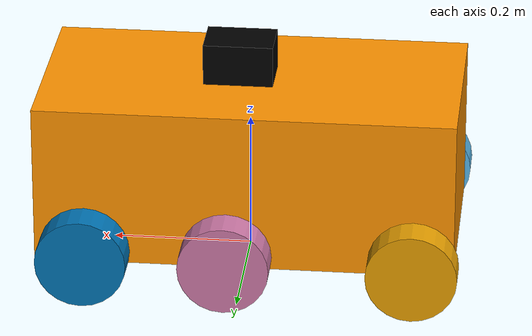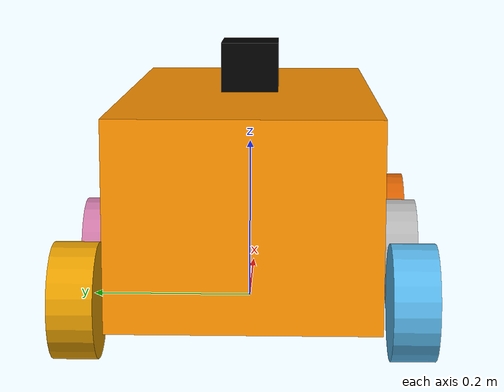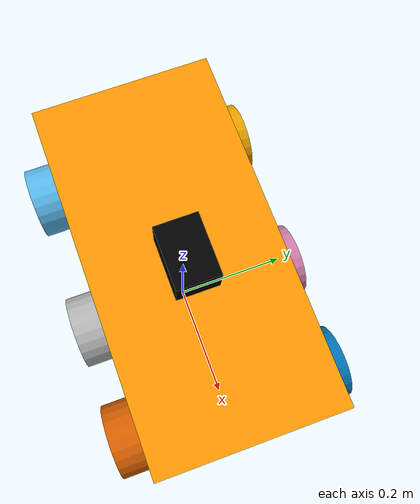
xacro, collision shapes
<?xml version="1.0"?>
<robot name="rover" xmlns:xacro="http://www.ros.org/wiki/xacro">

    <!-- Materials -->

    <xacro:arg name="odom_frame" default="odom"/>
    <xacro:arg name="base_footprint" default="base_footprint"/>
    <xacro:arg name="base_stabilized" default="base_stabilized"/>
    <xacro:arg name="base_frame" default="base_link"/>
    <xacro:arg name="lase_frame" default="laser"/>

    <material name="black">
        <color rgba="0 0 0 1"/>
    </material>

    <material name="white">
        <color rgba="1 1 1 1"/>
    </material>

    <material name="red">
        <color rgba="1 0 0 1"/>
    </material>

    <material name="FF9300">
        <color rgba="1 0.576470588 0 1"/>
    </material>

    <!-- Map link -->
    <link name="map" />

    <!-- Base foot print -->
    <link name="$(arg base_footprint)" />

    <joint name="$(arg base_footprint)_to_map_joint" type="fixed">
        <origin xyz="0.0 0.0 0.0" rpy="0.0 0.0 0.0"/>
        <parent link="map"/>
        <child link="$(arg base_footprint)"/>
    </joint>

    <link name="$(arg base_stabilized)" />

    <joint name="$(arg base_stabilized)_to_$(arg base_footprint)_joint" type="fixed">
        <origin xyz="0.0 0.0 0.14" rpy="0.0 0.0 0.0"/>
        <parent link="$(arg base_footprint)"/>
        <child link="$(arg base_stabilized)"/>
    </joint>

    <!-- List of 3D inertia tensors: https://en.wikipedia.org/wiki/List_of_moments_of_inertia#List_of_3D_inertia_tensors -->
    <!-- To calculate inertia on baselink-->
    <xacro:property name="pi" value="3.14159265359"/>
    <xacro:property name="const" value="${1/12}"/>
    <xacro:property name="base_mass" value="1.0"/> <!--Kg-->
    <xacro:property name="base_width" value="0.6"/>
    <xacro:property name="base_height" value="0.232"/>
    <xacro:property name="base_depth" value="0.3"/>

    <xacro:property name="scale" value="0.001"/> <!-- This works for base_link and laser links, helps to scale them propertly-->

    <!-- Base link -->
    <link name="$(arg base_frame)">

        <inertial>  <!--Inertial model for simulation on GAZEBO -->
            <origin xyz="-0.004 0.0 0.009" rpy="0.0 0.0 0.0"/>
            <mass value="${base_mass}"/>
            <inertia ixx="${const * (base_mass * (base_height**2 + base_depth**2))}" ixy="0.0" ixz="0.0"
                     iyy="${const * (base_mass * (base_width**2 + base_height**2))}" iyz="0.0"
                     izz="${const * (base_mass * (base_width**2 + base_depth**2))}"/>
        </inertial>

        <visual> <!-- Visual model for RVIZ and GAZENBO-->
            <origin xyz="0.0 0.0 -0.12" rpy="0.0 0.0 0.0"/>
            <geometry>
                <mesh filename="package://rover_pkg/meshes/base4.stl" scale="${scale} ${scale} ${scale}"/>
            </geometry>
            <material name="FF9300"/>
        </visual>

        <collision> <!-- Simplified collision model for RVIZ and GAZENBO -->
            <origin xyz="-0.004 0.0 0.009" rpy="0.0 0.0 0.0"/>
            <geometry>
                <box size="${base_width} ${base_depth} ${base_height}" />
            </geometry>
        </collision>
    </link>

    <joint name="$(arg base_frame)_joint" type="fixed">
        <origin xyz="0.0 0.0 0.0" rpy="0.0 0.0 0.0"/>
        <parent link="$(arg base_stabilized)"/>
        <child link="$(arg base_frame)"/>
    </joint>

    <xacro:macro name="wheel" params="name x y z">
        <link name="${name}_wheel_link">

            <collision>
            <origin xyz="0.0 0.0 0.0" rpy="${pi/2.0} 0.0 0.0"/>
                <geometry>
                    <cylinder radius="0.065" length="0.05"/>
                </geometry>
                <material name="red"/>
            </collision>
        </link>

        <joint name="${name}_wheel_joint" type="fixed">
            <origin xyz="${x} ${y} ${z}" rpy="0.0 0.0 0.0"/>
            <parent link="$(arg base_frame)"/>
            <child link="${name}_wheel_link"/>
        </joint>
    </xacro:macro>

    <!-- Properties to clean up the code-->
    <xacro:property name="wheel_to_base_height" value="-0.0841" />
    <xacro:property name="wheel_to_base_deep" value="0.185" />

    <!-- Rear Right Front -->
    <xacro:wheel name="rear_right_front" x="0.222" y="${wheel_to_base_deep}" z="${wheel_to_base_height}" />
    <!-- Rear Left Front -->
    <xacro:wheel name="rear_left_front" x="0.222" y="${-wheel_to_base_deep}" z="${wheel_to_base_height}" />
    <!-- Rear Right Middle -->
    <xacro:wheel name="rear_right_middle" x="0.019" y="${wheel_to_base_deep}" z="${wheel_to_base_height}" />
    <!-- Rear Left Middle -->
    <xacro:wheel name="rear_left_middle" x="0.019" y="${-wheel_to_base_deep}" z="${wheel_to_base_height}" />
    <!-- Rear Right Back -->
    <xacro:wheel name="rear_right_back" x="-0.247" y="${wheel_to_base_deep}" z="${wheel_to_base_height}" />
    <!-- Rear Left Back -->
    <xacro:wheel name="rear_left_back" x="-0.247" y="${-wheel_to_base_deep}" z="${wheel_to_base_height}" />

    <!-- To calculate inertia on baselink-->
    <xacro:property name="laser_mass" value="0.2"/> <!--Kg-->
    <xacro:property name="laser_width" value="0.1"/>
    <xacro:property name="laser_height" value="0.07"/>
    <xacro:property name="laser_depth" value="0.07"/>

    <!-- Laser link -->
    <link name="$(arg lase_frame)">

        <inertial>
            <origin xyz="0.0 0.0 0.0" rpy="0.0 0.0 0.0"/>
            <mass value="1.0"/>
            <inertia ixx="${const * (laser_mass * (laser_height**2 + laser_depth**2))}" ixy="0.0" ixz="0.0"
                     iyy="${const * (laser_mass * (laser_width**2 + laser_height**2))}" iyz="0.0"
                     izz="${const * (laser_mass * (laser_width**2 + laser_depth**2))}"/>
        </inertial>

        <visual>
            <origin xyz="-0.035 0.035 -0.035" rpy="${pi/2} 0.0 0.0"/>
            <geometry>
                <mesh filename="package://rover_pkg/meshes/rplidar_main.stl" scale="${scale} ${scale} ${scale}"/>
            </geometry>
            <material name="black"/>
        </visual>

        <collision>
            <origin xyz="-0.015 0.0 0.0" rpy="0.0 0.0 0.0"/>
            <geometry>
                <box size="${laser_width} ${laser_depth} ${laser_height}" />
            </geometry>
        </collision>
    </link>

    <joint name="$(arg lase_frame)_joint" type="fixed">
        <origin xyz="0.0 0.0 0.15" rpy="0.0 0.0 ${pi}"/>
        <parent link="$(arg base_frame)"/>
        <child link="$(arg lase_frame)"/>
        <axis xyz="0.0 0.0 0.0"/>
    </joint>

    <gazebo>
        <plugin name="gazebo_ros_control" filename="libgazebo_ros_control.so">
            <robotNamespace>/</robotNamespace>
        </plugin>
    </gazebo>

</robot>
